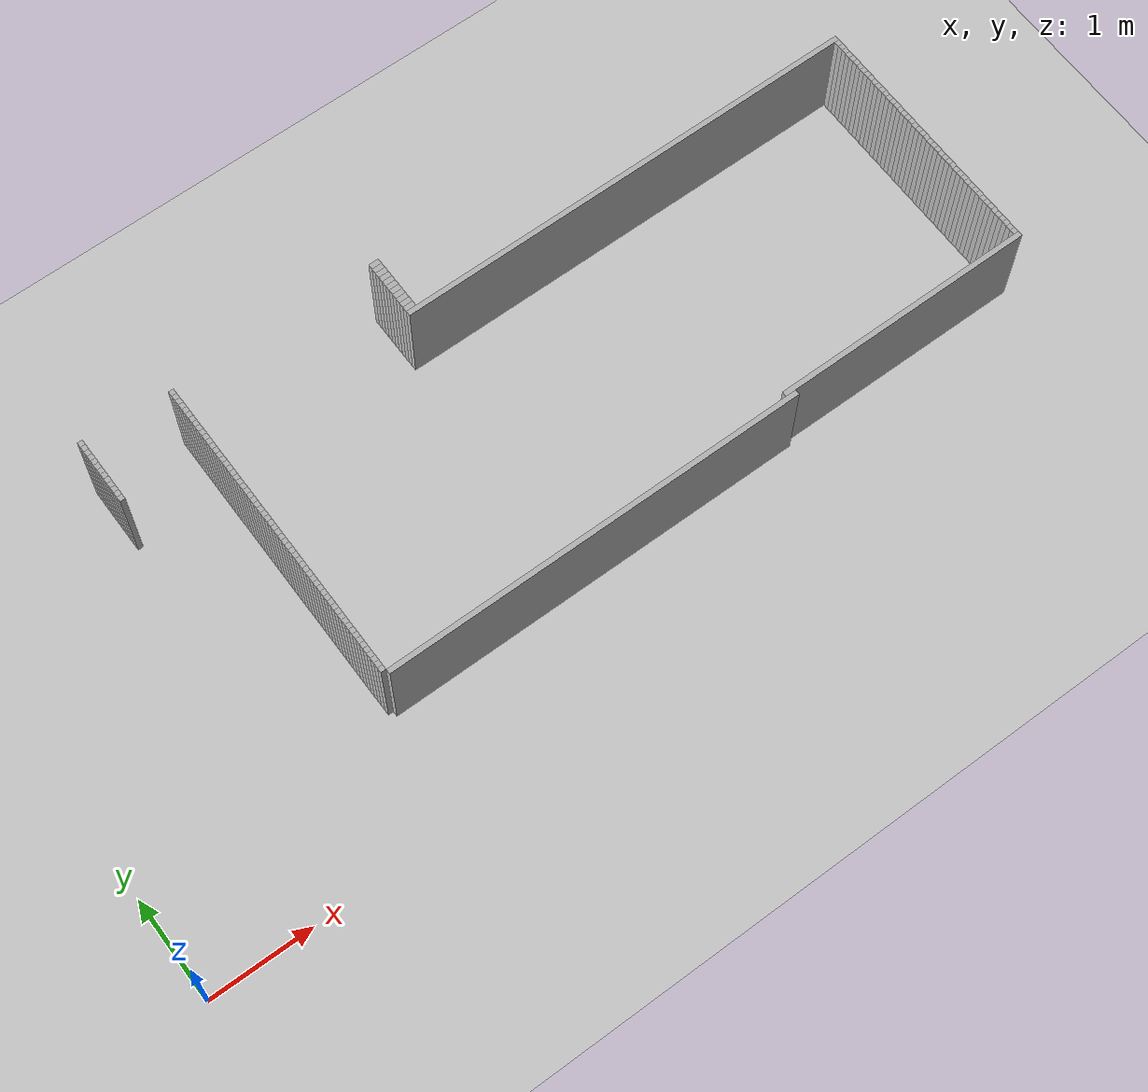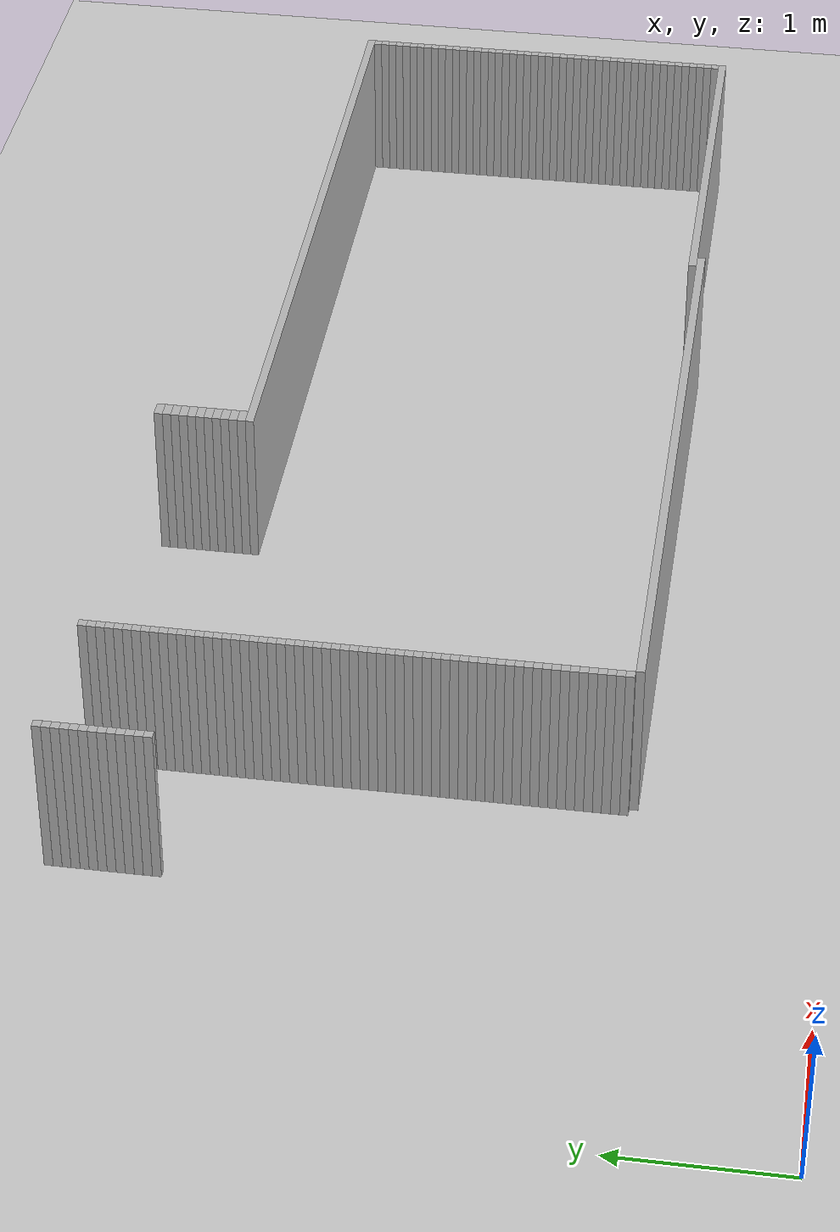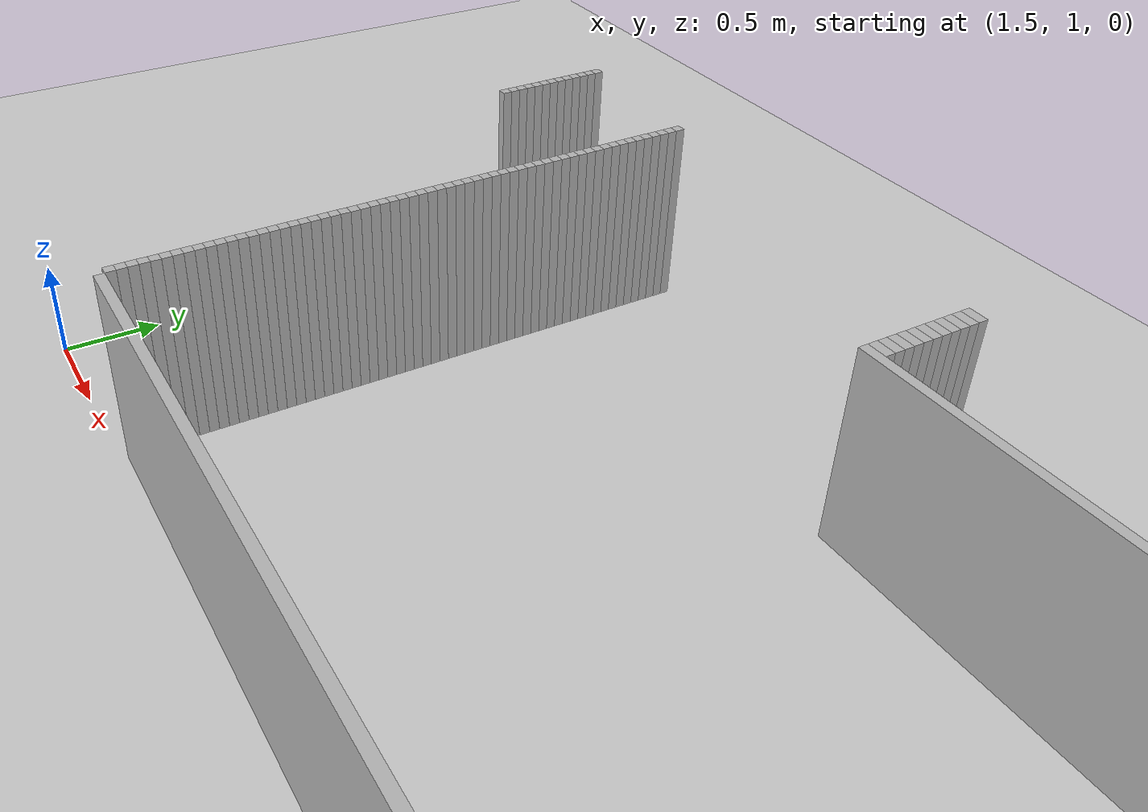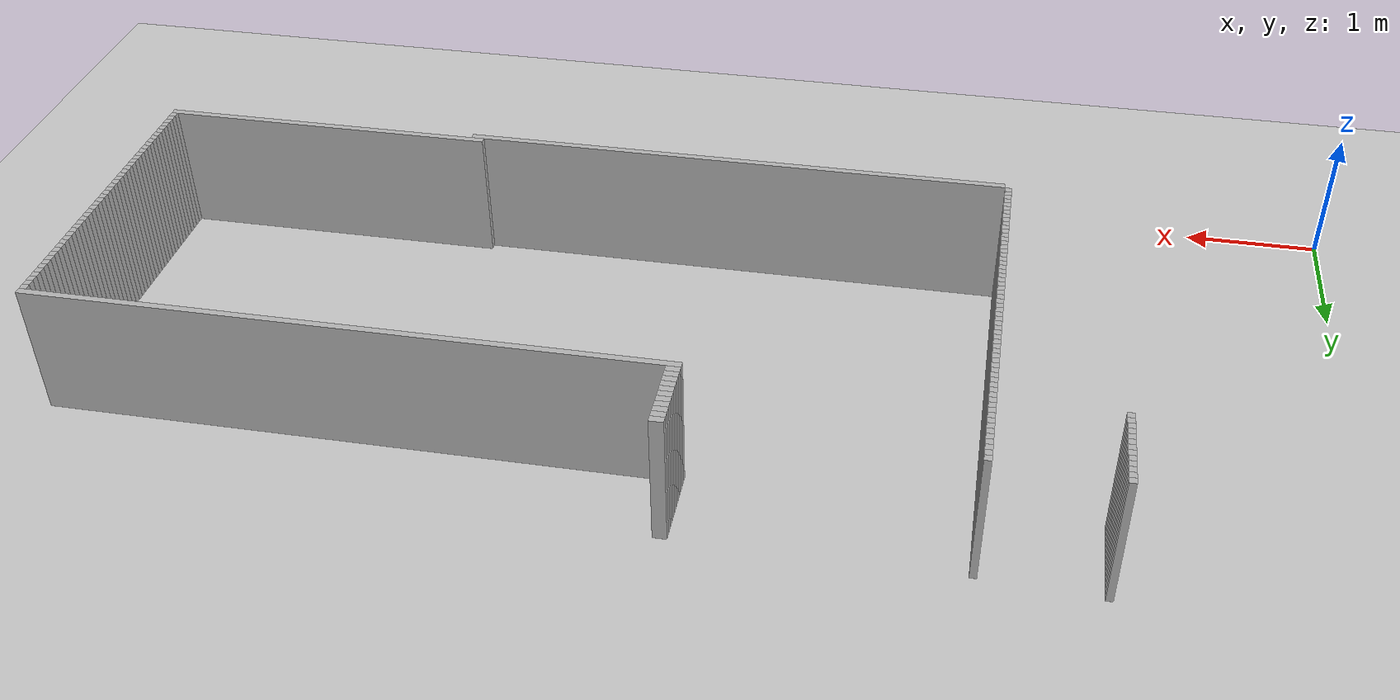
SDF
<sdf version="1.6">
 <world name="udh1_world">
  <include><uri>model://ground_plane</uri></include>
  <include><uri>model://sun</uri></include>
  <model name="wall_684">
   <static>true</static>
   <pose>1.6550000000000011 4.17 0.5 0 0 0</pose>
   <link name="link">
    <collision name="col"><geometry><box><size>0.05 0.05 1</size></box></geometry></collision>
    <visual name="vis"><geometry><box><size>0.05 0.05 1</size></box></geometry></visual>
   </link>
  </model>
  <model name="wall_694">
   <static>true</static>
   <pose>1.6550000000000011 4.119999999999999 0.5 0 0 0</pose>
   <link name="link">
    <collision name="col"><geometry><box><size>0.05 0.05 1</size></box></geometry></collision>
    <visual name="vis"><geometry><box><size>0.05 0.05 1</size></box></geometry></visual>
   </link>
  </model>
  <model name="wall_695">
   <static>true</static>
   <pose>2.505000000000001 4.119999999999999 0.5 0 0 0</pose>
   <link name="link">
    <collision name="col"><geometry><box><size>0.05 0.05 1</size></box></geometry></collision>
    <visual name="vis"><geometry><box><size>0.05 0.05 1</size></box></geometry></visual>
   </link>
  </model>
  <model name="wall_696">
   <static>true</static>
   <pose>4.530000000000001 4.119999999999999 0.5 0 0 0</pose>
   <link name="link">
    <collision name="col"><geometry><box><size>0.1 0.05 1</size></box></geometry></collision>
    <visual name="vis"><geometry><box><size>0.1 0.05 1</size></box></geometry></visual>
   </link>
  </model>
  <model name="wall_704">
   <static>true</static>
   <pose>1.6550000000000011 4.07 0.5 0 0 0</pose>
   <link name="link">
    <collision name="col"><geometry><box><size>0.05 0.05 1</size></box></geometry></collision>
    <visual name="vis"><geometry><box><size>0.05 0.05 1</size></box></geometry></visual>
   </link>
  </model>
  <model name="wall_705">
   <static>true</static>
   <pose>2.505000000000001 4.07 0.5 0 0 0</pose>
   <link name="link">
    <collision name="col"><geometry><box><size>0.05 0.05 1</size></box></geometry></collision>
    <visual name="vis"><geometry><box><size>0.05 0.05 1</size></box></geometry></visual>
   </link>
  </model>
  <model name="wall_706">
   <static>true</static>
   <pose>4.530000000000001 4.07 0.5 0 0 0</pose>
   <link name="link">
    <collision name="col"><geometry><box><size>0.1 0.05 1</size></box></geometry></collision>
    <visual name="vis"><geometry><box><size>0.1 0.05 1</size></box></geometry></visual>
   </link>
  </model>
  <model name="wall_714">
   <static>true</static>
   <pose>1.6550000000000011 4.02 0.5 0 0 0</pose>
   <link name="link">
    <collision name="col"><geometry><box><size>0.05 0.05 1</size></box></geometry></collision>
    <visual name="vis"><geometry><box><size>0.05 0.05 1</size></box></geometry></visual>
   </link>
  </model>
  <model name="wall_715">
   <static>true</static>
   <pose>2.505000000000001 4.02 0.5 0 0 0</pose>
   <link name="link">
    <collision name="col"><geometry><box><size>0.05 0.05 1</size></box></geometry></collision>
    <visual name="vis"><geometry><box><size>0.05 0.05 1</size></box></geometry></visual>
   </link>
  </model>
  <model name="wall_716">
   <static>true</static>
   <pose>4.530000000000001 4.02 0.5 0 0 0</pose>
   <link name="link">
    <collision name="col"><geometry><box><size>0.1 0.05 1</size></box></geometry></collision>
    <visual name="vis"><geometry><box><size>0.1 0.05 1</size></box></geometry></visual>
   </link>
  </model>
  <model name="wall_724">
   <static>true</static>
   <pose>1.6550000000000011 3.9700000000000006 0.5 0 0 0</pose>
   <link name="link">
    <collision name="col"><geometry><box><size>0.05 0.05 1</size></box></geometry></collision>
    <visual name="vis"><geometry><box><size>0.05 0.05 1</size></box></geometry></visual>
   </link>
  </model>
  <model name="wall_725">
   <static>true</static>
   <pose>2.505000000000001 3.9700000000000006 0.5 0 0 0</pose>
   <link name="link">
    <collision name="col"><geometry><box><size>0.05 0.05 1</size></box></geometry></collision>
    <visual name="vis"><geometry><box><size>0.05 0.05 1</size></box></geometry></visual>
   </link>
  </model>
  <model name="wall_726">
   <static>true</static>
   <pose>4.530000000000001 3.9700000000000006 0.5 0 0 0</pose>
   <link name="link">
    <collision name="col"><geometry><box><size>0.1 0.05 1</size></box></geometry></collision>
    <visual name="vis"><geometry><box><size>0.1 0.05 1</size></box></geometry></visual>
   </link>
  </model>
  <model name="wall_734">
   <static>true</static>
   <pose>1.6550000000000011 3.92 0.5 0 0 0</pose>
   <link name="link">
    <collision name="col"><geometry><box><size>0.05 0.05 1</size></box></geometry></collision>
    <visual name="vis"><geometry><box><size>0.05 0.05 1</size></box></geometry></visual>
   </link>
  </model>
  <model name="wall_735">
   <static>true</static>
   <pose>2.505000000000001 3.92 0.5 0 0 0</pose>
   <link name="link">
    <collision name="col"><geometry><box><size>0.05 0.05 1</size></box></geometry></collision>
    <visual name="vis"><geometry><box><size>0.05 0.05 1</size></box></geometry></visual>
   </link>
  </model>
  <model name="wall_736">
   <static>true</static>
   <pose>4.530000000000001 3.92 0.5 0 0 0</pose>
   <link name="link">
    <collision name="col"><geometry><box><size>0.1 0.05 1</size></box></geometry></collision>
    <visual name="vis"><geometry><box><size>0.1 0.05 1</size></box></geometry></visual>
   </link>
  </model>
  <model name="wall_744">
   <static>true</static>
   <pose>1.6550000000000011 3.869999999999999 0.5 0 0 0</pose>
   <link name="link">
    <collision name="col"><geometry><box><size>0.05 0.05 1</size></box></geometry></collision>
    <visual name="vis"><geometry><box><size>0.05 0.05 1</size></box></geometry></visual>
   </link>
  </model>
  <model name="wall_745">
   <static>true</static>
   <pose>2.505000000000001 3.869999999999999 0.5 0 0 0</pose>
   <link name="link">
    <collision name="col"><geometry><box><size>0.05 0.05 1</size></box></geometry></collision>
    <visual name="vis"><geometry><box><size>0.05 0.05 1</size></box></geometry></visual>
   </link>
  </model>
  <model name="wall_746">
   <static>true</static>
   <pose>4.530000000000001 3.869999999999999 0.5 0 0 0</pose>
   <link name="link">
    <collision name="col"><geometry><box><size>0.1 0.05 1</size></box></geometry></collision>
    <visual name="vis"><geometry><box><size>0.1 0.05 1</size></box></geometry></visual>
   </link>
  </model>
  <model name="wall_754">
   <static>true</static>
   <pose>1.6550000000000011 3.8200000000000003 0.5 0 0 0</pose>
   <link name="link">
    <collision name="col"><geometry><box><size>0.05 0.05 1</size></box></geometry></collision>
    <visual name="vis"><geometry><box><size>0.05 0.05 1</size></box></geometry></visual>
   </link>
  </model>
  <model name="wall_755">
   <static>true</static>
   <pose>2.505000000000001 3.8200000000000003 0.5 0 0 0</pose>
   <link name="link">
    <collision name="col"><geometry><box><size>0.05 0.05 1</size></box></geometry></collision>
    <visual name="vis"><geometry><box><size>0.05 0.05 1</size></box></geometry></visual>
   </link>
  </model>
  <model name="wall_756">
   <static>true</static>
   <pose>4.530000000000001 3.8200000000000003 0.5 0 0 0</pose>
   <link name="link">
    <collision name="col"><geometry><box><size>0.1 0.05 1</size></box></geometry></collision>
    <visual name="vis"><geometry><box><size>0.1 0.05 1</size></box></geometry></visual>
   </link>
  </model>
  <model name="wall_764">
   <static>true</static>
   <pose>1.6550000000000011 3.7699999999999996 0.5 0 0 0</pose>
   <link name="link">
    <collision name="col"><geometry><box><size>0.05 0.05 1</size></box></geometry></collision>
    <visual name="vis"><geometry><box><size>0.05 0.05 1</size></box></geometry></visual>
   </link>
  </model>
  <model name="wall_765">
   <static>true</static>
   <pose>2.505000000000001 3.7699999999999996 0.5 0 0 0</pose>
   <link name="link">
    <collision name="col"><geometry><box><size>0.05 0.05 1</size></box></geometry></collision>
    <visual name="vis"><geometry><box><size>0.05 0.05 1</size></box></geometry></visual>
   </link>
  </model>
  <model name="wall_766">
   <static>true</static>
   <pose>4.530000000000001 3.7699999999999996 0.5 0 0 0</pose>
   <link name="link">
    <collision name="col"><geometry><box><size>0.1 0.05 1</size></box></geometry></collision>
    <visual name="vis"><geometry><box><size>0.1 0.05 1</size></box></geometry></visual>
   </link>
  </model>
  <model name="wall_774">
   <static>true</static>
   <pose>1.6550000000000011 3.7200000000000006 0.5 0 0 0</pose>
   <link name="link">
    <collision name="col"><geometry><box><size>0.05 0.05 1</size></box></geometry></collision>
    <visual name="vis"><geometry><box><size>0.05 0.05 1</size></box></geometry></visual>
   </link>
  </model>
  <model name="wall_775">
   <static>true</static>
   <pose>2.505000000000001 3.7200000000000006 0.5 0 0 0</pose>
   <link name="link">
    <collision name="col"><geometry><box><size>0.05 0.05 1</size></box></geometry></collision>
    <visual name="vis"><geometry><box><size>0.05 0.05 1</size></box></geometry></visual>
   </link>
  </model>
  <model name="wall_776">
   <static>true</static>
   <pose>4.530000000000001 3.7200000000000006 0.5 0 0 0</pose>
   <link name="link">
    <collision name="col"><geometry><box><size>0.1 0.05 1</size></box></geometry></collision>
    <visual name="vis"><geometry><box><size>0.1 0.05 1</size></box></geometry></visual>
   </link>
  </model>
  <model name="wall_784">
   <static>true</static>
   <pose>1.6550000000000011 3.67 0.5 0 0 0</pose>
   <link name="link">
    <collision name="col"><geometry><box><size>0.05 0.05 1</size></box></geometry></collision>
    <visual name="vis"><geometry><box><size>0.05 0.05 1</size></box></geometry></visual>
   </link>
  </model>
  <model name="wall_785">
   <static>true</static>
   <pose>2.505000000000001 3.67 0.5 0 0 0</pose>
   <link name="link">
    <collision name="col"><geometry><box><size>0.05 0.05 1</size></box></geometry></collision>
    <visual name="vis"><geometry><box><size>0.05 0.05 1</size></box></geometry></visual>
   </link>
  </model>
  <model name="wall_786">
   <static>true</static>
   <pose>4.530000000000001 3.67 0.5 0 0 0</pose>
   <link name="link">
    <collision name="col"><geometry><box><size>0.1 0.05 1</size></box></geometry></collision>
    <visual name="vis"><geometry><box><size>0.1 0.05 1</size></box></geometry></visual>
   </link>
  </model>
  <model name="wall_793">
   <static>true</static>
   <pose>1.6550000000000011 3.619999999999999 0.5 0 0 0</pose>
   <link name="link">
    <collision name="col"><geometry><box><size>0.05 0.05 1</size></box></geometry></collision>
    <visual name="vis"><geometry><box><size>0.05 0.05 1</size></box></geometry></visual>
   </link>
  </model>
  <model name="wall_794">
   <static>true</static>
   <pose>2.505000000000001 3.619999999999999 0.5 0 0 0</pose>
   <link name="link">
    <collision name="col"><geometry><box><size>0.05 0.05 1</size></box></geometry></collision>
    <visual name="vis"><geometry><box><size>0.05 0.05 1</size></box></geometry></visual>
   </link>
  </model>
  <model name="wall_795">
   <static>true</static>
   <pose>4.530000000000001 3.619999999999999 0.5 0 0 0</pose>
   <link name="link">
    <collision name="col"><geometry><box><size>0.1 0.05 1</size></box></geometry></collision>
    <visual name="vis"><geometry><box><size>0.1 0.05 1</size></box></geometry></visual>
   </link>
  </model>
  <model name="wall_803">
   <static>true</static>
   <pose>1.6550000000000011 3.5700000000000003 0.5 0 0 0</pose>
   <link name="link">
    <collision name="col"><geometry><box><size>0.05 0.05 1</size></box></geometry></collision>
    <visual name="vis"><geometry><box><size>0.05 0.05 1</size></box></geometry></visual>
   </link>
  </model>
  <model name="wall_804">
   <static>true</static>
   <pose>2.505000000000001 3.5700000000000003 0.5 0 0 0</pose>
   <link name="link">
    <collision name="col"><geometry><box><size>0.05 0.05 1</size></box></geometry></collision>
    <visual name="vis"><geometry><box><size>0.05 0.05 1</size></box></geometry></visual>
   </link>
  </model>
  <model name="wall_805">
   <static>true</static>
   <pose>6.780000000000001 3.5700000000000003 0.5 0 0 0</pose>
   <link name="link">
    <collision name="col"><geometry><box><size>4.6000000000000005 0.05 1</size></box></geometry></collision>
    <visual name="vis"><geometry><box><size>4.6000000000000005 0.05 1</size></box></geometry></visual>
   </link>
  </model>
  <model name="wall_814">
   <static>true</static>
   <pose>2.505000000000001 3.5199999999999996 0.5 0 0 0</pose>
   <link name="link">
    <collision name="col"><geometry><box><size>0.05 0.05 1</size></box></geometry></collision>
    <visual name="vis"><geometry><box><size>0.05 0.05 1</size></box></geometry></visual>
   </link>
  </model>
  <model name="wall_815">
   <static>true</static>
   <pose>9.055 3.5199999999999996 0.5 0 0 0</pose>
   <link name="link">
    <collision name="col"><geometry><box><size>0.05 0.05 1</size></box></geometry></collision>
    <visual name="vis"><geometry><box><size>0.05 0.05 1</size></box></geometry></visual>
   </link>
  </model>
  <model name="wall_824">
   <static>true</static>
   <pose>2.505000000000001 3.4700000000000006 0.5 0 0 0</pose>
   <link name="link">
    <collision name="col"><geometry><box><size>0.05 0.05 1</size></box></geometry></collision>
    <visual name="vis"><geometry><box><size>0.05 0.05 1</size></box></geometry></visual>
   </link>
  </model>
  <model name="wall_825">
   <static>true</static>
   <pose>9.055 3.4700000000000006 0.5 0 0 0</pose>
   <link name="link">
    <collision name="col"><geometry><box><size>0.05 0.05 1</size></box></geometry></collision>
    <visual name="vis"><geometry><box><size>0.05 0.05 1</size></box></geometry></visual>
   </link>
  </model>
  <model name="wall_834">
   <static>true</static>
   <pose>2.505000000000001 3.42 0.5 0 0 0</pose>
   <link name="link">
    <collision name="col"><geometry><box><size>0.05 0.05 1</size></box></geometry></collision>
    <visual name="vis"><geometry><box><size>0.05 0.05 1</size></box></geometry></visual>
   </link>
  </model>
  <model name="wall_835">
   <static>true</static>
   <pose>9.055 3.42 0.5 0 0 0</pose>
   <link name="link">
    <collision name="col"><geometry><box><size>0.05 0.05 1</size></box></geometry></collision>
    <visual name="vis"><geometry><box><size>0.05 0.05 1</size></box></geometry></visual>
   </link>
  </model>
  <model name="wall_844">
   <static>true</static>
   <pose>2.505000000000001 3.369999999999999 0.5 0 0 0</pose>
   <link name="link">
    <collision name="col"><geometry><box><size>0.05 0.05 1</size></box></geometry></collision>
    <visual name="vis"><geometry><box><size>0.05 0.05 1</size></box></geometry></visual>
   </link>
  </model>
  <model name="wall_845">
   <static>true</static>
   <pose>9.055 3.369999999999999 0.5 0 0 0</pose>
   <link name="link">
    <collision name="col"><geometry><box><size>0.05 0.05 1</size></box></geometry></collision>
    <visual name="vis"><geometry><box><size>0.05 0.05 1</size></box></geometry></visual>
   </link>
  </model>
  <model name="wall_854">
   <static>true</static>
   <pose>2.505000000000001 3.3200000000000003 0.5 0 0 0</pose>
   <link name="link">
    <collision name="col"><geometry><box><size>0.05 0.05 1</size></box></geometry></collision>
    <visual name="vis"><geometry><box><size>0.05 0.05 1</size></box></geometry></visual>
   </link>
  </model>
  <model name="wall_855">
   <static>true</static>
   <pose>9.055 3.3200000000000003 0.5 0 0 0</pose>
   <link name="link">
    <collision name="col"><geometry><box><size>0.05 0.05 1</size></box></geometry></collision>
    <visual name="vis"><geometry><box><size>0.05 0.05 1</size></box></geometry></visual>
   </link>
  </model>
  <model name="wall_864">
   <static>true</static>
   <pose>2.505000000000001 3.2699999999999996 0.5 0 0 0</pose>
   <link name="link">
    <collision name="col"><geometry><box><size>0.05 0.05 1</size></box></geometry></collision>
    <visual name="vis"><geometry><box><size>0.05 0.05 1</size></box></geometry></visual>
   </link>
  </model>
  <model name="wall_865">
   <static>true</static>
   <pose>9.055 3.2699999999999996 0.5 0 0 0</pose>
   <link name="link">
    <collision name="col"><geometry><box><size>0.05 0.05 1</size></box></geometry></collision>
    <visual name="vis"><geometry><box><size>0.05 0.05 1</size></box></geometry></visual>
   </link>
  </model>
  <model name="wall_874">
   <static>true</static>
   <pose>2.505000000000001 3.2200000000000006 0.5 0 0 0</pose>
   <link name="link">
    <collision name="col"><geometry><box><size>0.05 0.05 1</size></box></geometry></collision>
    <visual name="vis"><geometry><box><size>0.05 0.05 1</size></box></geometry></visual>
   </link>
  </model>
  <model name="wall_875">
   <static>true</static>
   <pose>9.055 3.2200000000000006 0.5 0 0 0</pose>
   <link name="link">
    <collision name="col"><geometry><box><size>0.05 0.05 1</size></box></geometry></collision>
    <visual name="vis"><geometry><box><size>0.05 0.05 1</size></box></geometry></visual>
   </link>
  </model>
  <model name="wall_884">
   <static>true</static>
   <pose>2.505000000000001 3.17 0.5 0 0 0</pose>
   <link name="link">
    <collision name="col"><geometry><box><size>0.05 0.05 1</size></box></geometry></collision>
    <visual name="vis"><geometry><box><size>0.05 0.05 1</size></box></geometry></visual>
   </link>
  </model>
  <model name="wall_885">
   <static>true</static>
   <pose>9.055 3.17 0.5 0 0 0</pose>
   <link name="link">
    <collision name="col"><geometry><box><size>0.05 0.05 1</size></box></geometry></collision>
    <visual name="vis"><geometry><box><size>0.05 0.05 1</size></box></geometry></visual>
   </link>
  </model>
  <model name="wall_894">
   <static>true</static>
   <pose>2.505000000000001 3.119999999999999 0.5 0 0 0</pose>
   <link name="link">
    <collision name="col"><geometry><box><size>0.05 0.05 1</size></box></geometry></collision>
    <visual name="vis"><geometry><box><size>0.05 0.05 1</size></box></geometry></visual>
   </link>
  </model>
  <model name="wall_895">
   <static>true</static>
   <pose>9.055 3.119999999999999 0.5 0 0 0</pose>
   <link name="link">
    <collision name="col"><geometry><box><size>0.05 0.05 1</size></box></geometry></collision>
    <visual name="vis"><geometry><box><size>0.05 0.05 1</size></box></geometry></visual>
   </link>
  </model>
  <model name="wall_904">
   <static>true</static>
   <pose>2.505000000000001 3.0700000000000003 0.5 0 0 0</pose>
   <link name="link">
    <collision name="col"><geometry><box><size>0.05 0.05 1</size></box></geometry></collision>
    <visual name="vis"><geometry><box><size>0.05 0.05 1</size></box></geometry></visual>
   </link>
  </model>
  <model name="wall_905">
   <static>true</static>
   <pose>9.055 3.0700000000000003 0.5 0 0 0</pose>
   <link name="link">
    <collision name="col"><geometry><box><size>0.05 0.05 1</size></box></geometry></collision>
    <visual name="vis"><geometry><box><size>0.05 0.05 1</size></box></geometry></visual>
   </link>
  </model>
  <model name="wall_914">
   <static>true</static>
   <pose>2.505000000000001 3.0199999999999996 0.5 0 0 0</pose>
   <link name="link">
    <collision name="col"><geometry><box><size>0.05 0.05 1</size></box></geometry></collision>
    <visual name="vis"><geometry><box><size>0.05 0.05 1</size></box></geometry></visual>
   </link>
  </model>
  <model name="wall_915">
   <static>true</static>
   <pose>9.055 3.0199999999999996 0.5 0 0 0</pose>
   <link name="link">
    <collision name="col"><geometry><box><size>0.05 0.05 1</size></box></geometry></collision>
    <visual name="vis"><geometry><box><size>0.05 0.05 1</size></box></geometry></visual>
   </link>
  </model>
  <model name="wall_924">
   <static>true</static>
   <pose>2.505000000000001 2.9700000000000006 0.5 0 0 0</pose>
   <link name="link">
    <collision name="col"><geometry><box><size>0.05 0.05 1</size></box></geometry></collision>
    <visual name="vis"><geometry><box><size>0.05 0.05 1</size></box></geometry></visual>
   </link>
  </model>
  <model name="wall_925">
   <static>true</static>
   <pose>9.055 2.9700000000000006 0.5 0 0 0</pose>
   <link name="link">
    <collision name="col"><geometry><box><size>0.05 0.05 1</size></box></geometry></collision>
    <visual name="vis"><geometry><box><size>0.05 0.05 1</size></box></geometry></visual>
   </link>
  </model>
  <model name="wall_934">
   <static>true</static>
   <pose>2.505000000000001 2.92 0.5 0 0 0</pose>
   <link name="link">
    <collision name="col"><geometry><box><size>0.05 0.05 1</size></box></geometry></collision>
    <visual name="vis"><geometry><box><size>0.05 0.05 1</size></box></geometry></visual>
   </link>
  </model>
  <model name="wall_935">
   <static>true</static>
   <pose>9.055 2.92 0.5 0 0 0</pose>
   <link name="link">
    <collision name="col"><geometry><box><size>0.05 0.05 1</size></box></geometry></collision>
    <visual name="vis"><geometry><box><size>0.05 0.05 1</size></box></geometry></visual>
   </link>
  </model>
  <model name="wall_944">
   <static>true</static>
   <pose>2.505000000000001 2.869999999999999 0.5 0 0 0</pose>
   <link name="link">
    <collision name="col"><geometry><box><size>0.05 0.05 1</size></box></geometry></collision>
    <visual name="vis"><geometry><box><size>0.05 0.05 1</size></box></geometry></visual>
   </link>
  </model>
  <model name="wall_945">
   <static>true</static>
   <pose>9.055 2.869999999999999 0.5 0 0 0</pose>
   <link name="link">
    <collision name="col"><geometry><box><size>0.05 0.05 1</size></box></geometry></collision>
    <visual name="vis"><geometry><box><size>0.05 0.05 1</size></box></geometry></visual>
   </link>
  </model>
  <model name="wall_954">
   <static>true</static>
   <pose>2.505000000000001 2.8200000000000003 0.5 0 0 0</pose>
   <link name="link">
    <collision name="col"><geometry><box><size>0.05 0.05 1</size></box></geometry></collision>
    <visual name="vis"><geometry><box><size>0.05 0.05 1</size></box></geometry></visual>
   </link>
  </model>
  <model name="wall_955">
   <static>true</static>
   <pose>9.055 2.8200000000000003 0.5 0 0 0</pose>
   <link name="link">
    <collision name="col"><geometry><box><size>0.05 0.05 1</size></box></geometry></collision>
    <visual name="vis"><geometry><box><size>0.05 0.05 1</size></box></geometry></visual>
   </link>
  </model>
  <model name="wall_964">
   <static>true</static>
   <pose>2.505000000000001 2.7699999999999996 0.5 0 0 0</pose>
   <link name="link">
    <collision name="col"><geometry><box><size>0.05 0.05 1</size></box></geometry></collision>
    <visual name="vis"><geometry><box><size>0.05 0.05 1</size></box></geometry></visual>
   </link>
  </model>
  <model name="wall_965">
   <static>true</static>
   <pose>9.055 2.7699999999999996 0.5 0 0 0</pose>
   <link name="link">
    <collision name="col"><geometry><box><size>0.05 0.05 1</size></box></geometry></collision>
    <visual name="vis"><geometry><box><size>0.05 0.05 1</size></box></geometry></visual>
   </link>
  </model>
  <model name="wall_974">
   <static>true</static>
   <pose>2.505000000000001 2.7200000000000006 0.5 0 0 0</pose>
   <link name="link">
    <collision name="col"><geometry><box><size>0.05 0.05 1</size></box></geometry></collision>
    <visual name="vis"><geometry><box><size>0.05 0.05 1</size></box></geometry></visual>
   </link>
  </model>
  <model name="wall_975">
   <static>true</static>
   <pose>9.055 2.7200000000000006 0.5 0 0 0</pose>
   <link name="link">
    <collision name="col"><geometry><box><size>0.05 0.05 1</size></box></geometry></collision>
    <visual name="vis"><geometry><box><size>0.05 0.05 1</size></box></geometry></visual>
   </link>
  </model>
  <model name="wall_984">
   <static>true</static>
   <pose>2.505000000000001 2.67 0.5 0 0 0</pose>
   <link name="link">
    <collision name="col"><geometry><box><size>0.05 0.05 1</size></box></geometry></collision>
    <visual name="vis"><geometry><box><size>0.05 0.05 1</size></box></geometry></visual>
   </link>
  </model>
  <model name="wall_985">
   <static>true</static>
   <pose>9.055 2.67 0.5 0 0 0</pose>
   <link name="link">
    <collision name="col"><geometry><box><size>0.05 0.05 1</size></box></geometry></collision>
    <visual name="vis"><geometry><box><size>0.05 0.05 1</size></box></geometry></visual>
   </link>
  </model>
  <model name="wall_994">
   <static>true</static>
   <pose>2.505000000000001 2.619999999999999 0.5 0 0 0</pose>
   <link name="link">
    <collision name="col"><geometry><box><size>0.05 0.05 1</size></box></geometry></collision>
    <visual name="vis"><geometry><box><size>0.05 0.05 1</size></box></geometry></visual>
   </link>
  </model>
  <model name="wall_995">
   <static>true</static>
   <pose>9.055 2.619999999999999 0.5 0 0 0</pose>
   <link name="link">
    <collision name="col"><geometry><box><size>0.05 0.05 1</size></box></geometry></collision>
    <visual name="vis"><geometry><box><size>0.05 0.05 1</size></box></geometry></visual>
   </link>
  </model>
  <model name="wall_1004">
   <static>true</static>
   <pose>2.505000000000001 2.5700000000000003 0.5 0 0 0</pose>
   <link name="link">
    <collision name="col"><geometry><box><size>0.05 0.05 1</size></box></geometry></collision>
    <visual name="vis"><geometry><box><size>0.05 0.05 1</size></box></geometry></visual>
   </link>
  </model>
  <model name="wall_1005">
   <static>true</static>
   <pose>9.055 2.5700000000000003 0.5 0 0 0</pose>
   <link name="link">
    <collision name="col"><geometry><box><size>0.05 0.05 1</size></box></geometry></collision>
    <visual name="vis"><geometry><box><size>0.05 0.05 1</size></box></geometry></visual>
   </link>
  </model>
  <model name="wall_1014">
   <static>true</static>
   <pose>2.505000000000001 2.5199999999999996 0.5 0 0 0</pose>
   <link name="link">
    <collision name="col"><geometry><box><size>0.05 0.05 1</size></box></geometry></collision>
    <visual name="vis"><geometry><box><size>0.05 0.05 1</size></box></geometry></visual>
   </link>
  </model>
  <model name="wall_1015">
   <static>true</static>
   <pose>9.055 2.5199999999999996 0.5 0 0 0</pose>
   <link name="link">
    <collision name="col"><geometry><box><size>0.05 0.05 1</size></box></geometry></collision>
    <visual name="vis"><geometry><box><size>0.05 0.05 1</size></box></geometry></visual>
   </link>
  </model>
  <model name="wall_1024">
   <static>true</static>
   <pose>2.505000000000001 2.4700000000000006 0.5 0 0 0</pose>
   <link name="link">
    <collision name="col"><geometry><box><size>0.05 0.05 1</size></box></geometry></collision>
    <visual name="vis"><geometry><box><size>0.05 0.05 1</size></box></geometry></visual>
   </link>
  </model>
  <model name="wall_1025">
   <static>true</static>
   <pose>9.055 2.4700000000000006 0.5 0 0 0</pose>
   <link name="link">
    <collision name="col"><geometry><box><size>0.05 0.05 1</size></box></geometry></collision>
    <visual name="vis"><geometry><box><size>0.05 0.05 1</size></box></geometry></visual>
   </link>
  </model>
  <model name="wall_1034">
   <static>true</static>
   <pose>2.505000000000001 2.42 0.5 0 0 0</pose>
   <link name="link">
    <collision name="col"><geometry><box><size>0.05 0.05 1</size></box></geometry></collision>
    <visual name="vis"><geometry><box><size>0.05 0.05 1</size></box></geometry></visual>
   </link>
  </model>
  <model name="wall_1035">
   <static>true</static>
   <pose>9.055 2.42 0.5 0 0 0</pose>
   <link name="link">
    <collision name="col"><geometry><box><size>0.05 0.05 1</size></box></geometry></collision>
    <visual name="vis"><geometry><box><size>0.05 0.05 1</size></box></geometry></visual>
   </link>
  </model>
  <model name="wall_1044">
   <static>true</static>
   <pose>2.505000000000001 2.369999999999999 0.5 0 0 0</pose>
   <link name="link">
    <collision name="col"><geometry><box><size>0.05 0.05 1</size></box></geometry></collision>
    <visual name="vis"><geometry><box><size>0.05 0.05 1</size></box></geometry></visual>
   </link>
  </model>
  <model name="wall_1045">
   <static>true</static>
   <pose>9.055 2.369999999999999 0.5 0 0 0</pose>
   <link name="link">
    <collision name="col"><geometry><box><size>0.05 0.05 1</size></box></geometry></collision>
    <visual name="vis"><geometry><box><size>0.05 0.05 1</size></box></geometry></visual>
   </link>
  </model>
  <model name="wall_1054">
   <static>true</static>
   <pose>2.505000000000001 2.3200000000000003 0.5 0 0 0</pose>
   <link name="link">
    <collision name="col"><geometry><box><size>0.05 0.05 1</size></box></geometry></collision>
    <visual name="vis"><geometry><box><size>0.05 0.05 1</size></box></geometry></visual>
   </link>
  </model>
  <model name="wall_1055">
   <static>true</static>
   <pose>9.055 2.3200000000000003 0.5 0 0 0</pose>
   <link name="link">
    <collision name="col"><geometry><box><size>0.05 0.05 1</size></box></geometry></collision>
    <visual name="vis"><geometry><box><size>0.05 0.05 1</size></box></geometry></visual>
   </link>
  </model>
  <model name="wall_1064">
   <static>true</static>
   <pose>2.505000000000001 2.2699999999999996 0.5 0 0 0</pose>
   <link name="link">
    <collision name="col"><geometry><box><size>0.05 0.05 1</size></box></geometry></collision>
    <visual name="vis"><geometry><box><size>0.05 0.05 1</size></box></geometry></visual>
   </link>
  </model>
  <model name="wall_1065">
   <static>true</static>
   <pose>9.055 2.2699999999999996 0.5 0 0 0</pose>
   <link name="link">
    <collision name="col"><geometry><box><size>0.05 0.05 1</size></box></geometry></collision>
    <visual name="vis"><geometry><box><size>0.05 0.05 1</size></box></geometry></visual>
   </link>
  </model>
  <model name="wall_1074">
   <static>true</static>
   <pose>2.505000000000001 2.2200000000000006 0.5 0 0 0</pose>
   <link name="link">
    <collision name="col"><geometry><box><size>0.05 0.05 1</size></box></geometry></collision>
    <visual name="vis"><geometry><box><size>0.05 0.05 1</size></box></geometry></visual>
   </link>
  </model>
  <model name="wall_1075">
   <static>true</static>
   <pose>9.055 2.2200000000000006 0.5 0 0 0</pose>
   <link name="link">
    <collision name="col"><geometry><box><size>0.05 0.05 1</size></box></geometry></collision>
    <visual name="vis"><geometry><box><size>0.05 0.05 1</size></box></geometry></visual>
   </link>
  </model>
  <model name="wall_1091">
   <static>true</static>
   <pose>2.505000000000001 2.17 0.5 0 0 0</pose>
   <link name="link">
    <collision name="col"><geometry><box><size>0.05 0.05 1</size></box></geometry></collision>
    <visual name="vis"><geometry><box><size>0.05 0.05 1</size></box></geometry></visual>
   </link>
  </model>
  <model name="wall_1092">
   <static>true</static>
   <pose>9.055 2.17 0.5 0 0 0</pose>
   <link name="link">
    <collision name="col"><geometry><box><size>0.05 0.05 1</size></box></geometry></collision>
    <visual name="vis"><geometry><box><size>0.05 0.05 1</size></box></geometry></visual>
   </link>
  </model>
  <model name="wall_1101">
   <static>true</static>
   <pose>2.505000000000001 2.119999999999999 0.5 0 0 0</pose>
   <link name="link">
    <collision name="col"><geometry><box><size>0.05 0.05 1</size></box></geometry></collision>
    <visual name="vis"><geometry><box><size>0.05 0.05 1</size></box></geometry></visual>
   </link>
  </model>
  <model name="wall_1102">
   <static>true</static>
   <pose>9.055 2.119999999999999 0.5 0 0 0</pose>
   <link name="link">
    <collision name="col"><geometry><box><size>0.05 0.05 1</size></box></geometry></collision>
    <visual name="vis"><geometry><box><size>0.05 0.05 1</size></box></geometry></visual>
   </link>
  </model>
  <model name="wall_1111">
   <static>true</static>
   <pose>2.505000000000001 2.0700000000000003 0.5 0 0 0</pose>
   <link name="link">
    <collision name="col"><geometry><box><size>0.05 0.05 1</size></box></geometry></collision>
    <visual name="vis"><geometry><box><size>0.05 0.05 1</size></box></geometry></visual>
   </link>
  </model>
  <model name="wall_1112">
   <static>true</static>
   <pose>9.055 2.0700000000000003 0.5 0 0 0</pose>
   <link name="link">
    <collision name="col"><geometry><box><size>0.05 0.05 1</size></box></geometry></collision>
    <visual name="vis"><geometry><box><size>0.05 0.05 1</size></box></geometry></visual>
   </link>
  </model>
  <model name="wall_1121">
   <static>true</static>
   <pose>2.505000000000001 2.0199999999999996 0.5 0 0 0</pose>
   <link name="link">
    <collision name="col"><geometry><box><size>0.05 0.05 1</size></box></geometry></collision>
    <visual name="vis"><geometry><box><size>0.05 0.05 1</size></box></geometry></visual>
   </link>
  </model>
  <model name="wall_1122">
   <static>true</static>
   <pose>9.055 2.0199999999999996 0.5 0 0 0</pose>
   <link name="link">
    <collision name="col"><geometry><box><size>0.05 0.05 1</size></box></geometry></collision>
    <visual name="vis"><geometry><box><size>0.05 0.05 1</size></box></geometry></visual>
   </link>
  </model>
  <model name="wall_1131">
   <static>true</static>
   <pose>2.505000000000001 1.9700000000000006 0.5 0 0 0</pose>
   <link name="link">
    <collision name="col"><geometry><box><size>0.05 0.05 1</size></box></geometry></collision>
    <visual name="vis"><geometry><box><size>0.05 0.05 1</size></box></geometry></visual>
   </link>
  </model>
  <model name="wall_1132">
   <static>true</static>
   <pose>9.055 1.9700000000000006 0.5 0 0 0</pose>
   <link name="link">
    <collision name="col"><geometry><box><size>0.05 0.05 1</size></box></geometry></collision>
    <visual name="vis"><geometry><box><size>0.05 0.05 1</size></box></geometry></visual>
   </link>
  </model>
  <model name="wall_1141">
   <static>true</static>
   <pose>2.505000000000001 1.92 0.5 0 0 0</pose>
   <link name="link">
    <collision name="col"><geometry><box><size>0.05 0.05 1</size></box></geometry></collision>
    <visual name="vis"><geometry><box><size>0.05 0.05 1</size></box></geometry></visual>
   </link>
  </model>
  <model name="wall_1142">
   <static>true</static>
   <pose>9.055 1.92 0.5 0 0 0</pose>
   <link name="link">
    <collision name="col"><geometry><box><size>0.05 0.05 1</size></box></geometry></collision>
    <visual name="vis"><geometry><box><size>0.05 0.05 1</size></box></geometry></visual>
   </link>
  </model>
  <model name="wall_1151">
   <static>true</static>
   <pose>2.505000000000001 1.8699999999999992 0.5 0 0 0</pose>
   <link name="link">
    <collision name="col"><geometry><box><size>0.05 0.05 1</size></box></geometry></collision>
    <visual name="vis"><geometry><box><size>0.05 0.05 1</size></box></geometry></visual>
   </link>
  </model>
  <model name="wall_1152">
   <static>true</static>
   <pose>9.055 1.8699999999999992 0.5 0 0 0</pose>
   <link name="link">
    <collision name="col"><geometry><box><size>0.05 0.05 1</size></box></geometry></collision>
    <visual name="vis"><geometry><box><size>0.05 0.05 1</size></box></geometry></visual>
   </link>
  </model>
  <model name="wall_1161">
   <static>true</static>
   <pose>2.505000000000001 1.8200000000000003 0.5 0 0 0</pose>
   <link name="link">
    <collision name="col"><geometry><box><size>0.05 0.05 1</size></box></geometry></collision>
    <visual name="vis"><geometry><box><size>0.05 0.05 1</size></box></geometry></visual>
   </link>
  </model>
  <model name="wall_1162">
   <static>true</static>
   <pose>9.055 1.8200000000000003 0.5 0 0 0</pose>
   <link name="link">
    <collision name="col"><geometry><box><size>0.05 0.05 1</size></box></geometry></collision>
    <visual name="vis"><geometry><box><size>0.05 0.05 1</size></box></geometry></visual>
   </link>
  </model>
  <model name="wall_1171">
   <static>true</static>
   <pose>2.505000000000001 1.7699999999999996 0.5 0 0 0</pose>
   <link name="link">
    <collision name="col"><geometry><box><size>0.05 0.05 1</size></box></geometry></collision>
    <visual name="vis"><geometry><box><size>0.05 0.05 1</size></box></geometry></visual>
   </link>
  </model>
  <model name="wall_1172">
   <static>true</static>
   <pose>9.055 1.7699999999999996 0.5 0 0 0</pose>
   <link name="link">
    <collision name="col"><geometry><box><size>0.05 0.05 1</size></box></geometry></collision>
    <visual name="vis"><geometry><box><size>0.05 0.05 1</size></box></geometry></visual>
   </link>
  </model>
  <model name="wall_1181">
   <static>true</static>
   <pose>2.505000000000001 1.7200000000000006 0.5 0 0 0</pose>
   <link name="link">
    <collision name="col"><geometry><box><size>0.05 0.05 1</size></box></geometry></collision>
    <visual name="vis"><geometry><box><size>0.05 0.05 1</size></box></geometry></visual>
   </link>
  </model>
  <model name="wall_1182">
   <static>true</static>
   <pose>9.055 1.7200000000000006 0.5 0 0 0</pose>
   <link name="link">
    <collision name="col"><geometry><box><size>0.05 0.05 1</size></box></geometry></collision>
    <visual name="vis"><geometry><box><size>0.05 0.05 1</size></box></geometry></visual>
   </link>
  </model>
  <model name="wall_1190">
   <static>true</static>
   <pose>2.505000000000001 1.67 0.5 0 0 0</pose>
   <link name="link">
    <collision name="col"><geometry><box><size>0.05 0.05 1</size></box></geometry></collision>
    <visual name="vis"><geometry><box><size>0.05 0.05 1</size></box></geometry></visual>
   </link>
  </model>
  <model name="wall_1191">
   <static>true</static>
   <pose>9.055 1.67 0.5 0 0 0</pose>
   <link name="link">
    <collision name="col"><geometry><box><size>0.05 0.05 1</size></box></geometry></collision>
    <visual name="vis"><geometry><box><size>0.05 0.05 1</size></box></geometry></visual>
   </link>
  </model>
  <model name="wall_1199">
   <static>true</static>
   <pose>2.505000000000001 1.6199999999999992 0.5 0 0 0</pose>
   <link name="link">
    <collision name="col"><geometry><box><size>0.05 0.05 1</size></box></geometry></collision>
    <visual name="vis"><geometry><box><size>0.05 0.05 1</size></box></geometry></visual>
   </link>
  </model>
  <model name="wall_1200">
   <static>true</static>
   <pose>9.055 1.6199999999999992 0.5 0 0 0</pose>
   <link name="link">
    <collision name="col"><geometry><box><size>0.05 0.05 1</size></box></geometry></collision>
    <visual name="vis"><geometry><box><size>0.05 0.05 1</size></box></geometry></visual>
   </link>
  </model>
  <model name="wall_1209">
   <static>true</static>
   <pose>2.505000000000001 1.5700000000000003 0.5 0 0 0</pose>
   <link name="link">
    <collision name="col"><geometry><box><size>0.05 0.05 1</size></box></geometry></collision>
    <visual name="vis"><geometry><box><size>0.05 0.05 1</size></box></geometry></visual>
   </link>
  </model>
  <model name="wall_1210">
   <static>true</static>
   <pose>9.055 1.5700000000000003 0.5 0 0 0</pose>
   <link name="link">
    <collision name="col"><geometry><box><size>0.05 0.05 1</size></box></geometry></collision>
    <visual name="vis"><geometry><box><size>0.05 0.05 1</size></box></geometry></visual>
   </link>
  </model>
  <model name="wall_1219">
   <static>true</static>
   <pose>2.505000000000001 1.5199999999999996 0.5 0 0 0</pose>
   <link name="link">
    <collision name="col"><geometry><box><size>0.05 0.05 1</size></box></geometry></collision>
    <visual name="vis"><geometry><box><size>0.05 0.05 1</size></box></geometry></visual>
   </link>
  </model>
  <model name="wall_1220">
   <static>true</static>
   <pose>9.055 1.5199999999999996 0.5 0 0 0</pose>
   <link name="link">
    <collision name="col"><geometry><box><size>0.05 0.05 1</size></box></geometry></collision>
    <visual name="vis"><geometry><box><size>0.05 0.05 1</size></box></geometry></visual>
   </link>
  </model>
  <model name="wall_1228">
   <static>true</static>
   <pose>2.505000000000001 1.4700000000000006 0.5 0 0 0</pose>
   <link name="link">
    <collision name="col"><geometry><box><size>0.05 0.05 1</size></box></geometry></collision>
    <visual name="vis"><geometry><box><size>0.05 0.05 1</size></box></geometry></visual>
   </link>
  </model>
  <model name="wall_1229">
   <static>true</static>
   <pose>9.055 1.4700000000000006 0.5 0 0 0</pose>
   <link name="link">
    <collision name="col"><geometry><box><size>0.05 0.05 1</size></box></geometry></collision>
    <visual name="vis"><geometry><box><size>0.05 0.05 1</size></box></geometry></visual>
   </link>
  </model>
  <model name="wall_1238">
   <static>true</static>
   <pose>2.505000000000001 1.42 0.5 0 0 0</pose>
   <link name="link">
    <collision name="col"><geometry><box><size>0.05 0.05 1</size></box></geometry></collision>
    <visual name="vis"><geometry><box><size>0.05 0.05 1</size></box></geometry></visual>
   </link>
  </model>
  <model name="wall_1239">
   <static>true</static>
   <pose>9.055 1.42 0.5 0 0 0</pose>
   <link name="link">
    <collision name="col"><geometry><box><size>0.05 0.05 1</size></box></geometry></collision>
    <visual name="vis"><geometry><box><size>0.05 0.05 1</size></box></geometry></visual>
   </link>
  </model>
  <model name="wall_1248">
   <static>true</static>
   <pose>2.505000000000001 1.3699999999999992 0.5 0 0 0</pose>
   <link name="link">
    <collision name="col"><geometry><box><size>0.05 0.05 1</size></box></geometry></collision>
    <visual name="vis"><geometry><box><size>0.05 0.05 1</size></box></geometry></visual>
   </link>
  </model>
  <model name="wall_1249">
   <static>true</static>
   <pose>9.055 1.3699999999999992 0.5 0 0 0</pose>
   <link name="link">
    <collision name="col"><geometry><box><size>0.05 0.05 1</size></box></geometry></collision>
    <visual name="vis"><geometry><box><size>0.05 0.05 1</size></box></geometry></visual>
   </link>
  </model>
  <model name="wall_1258">
   <static>true</static>
   <pose>2.505000000000001 1.3200000000000003 0.5 0 0 0</pose>
   <link name="link">
    <collision name="col"><geometry><box><size>0.05 0.05 1</size></box></geometry></collision>
    <visual name="vis"><geometry><box><size>0.05 0.05 1</size></box></geometry></visual>
   </link>
  </model>
  <model name="wall_1259">
   <static>true</static>
   <pose>9.055 1.3200000000000003 0.5 0 0 0</pose>
   <link name="link">
    <collision name="col"><geometry><box><size>0.05 0.05 1</size></box></geometry></collision>
    <visual name="vis"><geometry><box><size>0.05 0.05 1</size></box></geometry></visual>
   </link>
  </model>
  <model name="wall_1268">
   <static>true</static>
   <pose>2.505000000000001 1.2699999999999996 0.5 0 0 0</pose>
   <link name="link">
    <collision name="col"><geometry><box><size>0.05 0.05 1</size></box></geometry></collision>
    <visual name="vis"><geometry><box><size>0.05 0.05 1</size></box></geometry></visual>
   </link>
  </model>
  <model name="wall_1269">
   <static>true</static>
   <pose>9.055 1.2699999999999996 0.5 0 0 0</pose>
   <link name="link">
    <collision name="col"><geometry><box><size>0.05 0.05 1</size></box></geometry></collision>
    <visual name="vis"><geometry><box><size>0.05 0.05 1</size></box></geometry></visual>
   </link>
  </model>
  <model name="wall_1277">
   <static>true</static>
   <pose>2.505000000000001 1.2200000000000006 0.5 0 0 0</pose>
   <link name="link">
    <collision name="col"><geometry><box><size>0.05 0.05 1</size></box></geometry></collision>
    <visual name="vis"><geometry><box><size>0.05 0.05 1</size></box></geometry></visual>
   </link>
  </model>
  <model name="wall_1278">
   <static>true</static>
   <pose>9.055 1.2200000000000006 0.5 0 0 0</pose>
   <link name="link">
    <collision name="col"><geometry><box><size>0.05 0.05 1</size></box></geometry></collision>
    <visual name="vis"><geometry><box><size>0.05 0.05 1</size></box></geometry></visual>
   </link>
  </model>
  <model name="wall_1286">
   <static>true</static>
   <pose>2.505000000000001 1.17 0.5 0 0 0</pose>
   <link name="link">
    <collision name="col"><geometry><box><size>0.05 0.05 1</size></box></geometry></collision>
    <visual name="vis"><geometry><box><size>0.05 0.05 1</size></box></geometry></visual>
   </link>
  </model>
  <model name="wall_1287">
   <static>true</static>
   <pose>9.055 1.17 0.5 0 0 0</pose>
   <link name="link">
    <collision name="col"><geometry><box><size>0.05 0.05 1</size></box></geometry></collision>
    <visual name="vis"><geometry><box><size>0.05 0.05 1</size></box></geometry></visual>
   </link>
  </model>
  <model name="wall_1299">
   <static>true</static>
   <pose>2.505000000000001 1.1199999999999992 0.5 0 0 0</pose>
   <link name="link">
    <collision name="col"><geometry><box><size>0.05 0.05 1</size></box></geometry></collision>
    <visual name="vis"><geometry><box><size>0.05 0.05 1</size></box></geometry></visual>
   </link>
  </model>
  <model name="wall_1300">
   <static>true</static>
   <pose>7.805 1.1199999999999992 0.5 0 0 0</pose>
   <link name="link">
    <collision name="col"><geometry><box><size>2.5500000000000003 0.05 1</size></box></geometry></collision>
    <visual name="vis"><geometry><box><size>2.5500000000000003 0.05 1</size></box></geometry></visual>
   </link>
  </model>
  <model name="wall_1308">
   <static>true</static>
   <pose>4.580000000000002 1.0700000000000003 0.5 0 0 0</pose>
   <link name="link">
    <collision name="col"><geometry><box><size>4.1000000000000005 0.05 1</size></box></geometry></collision>
    <visual name="vis"><geometry><box><size>4.1000000000000005 0.05 1</size></box></geometry></visual>
   </link>
  </model>
 </world>
</sdf>
